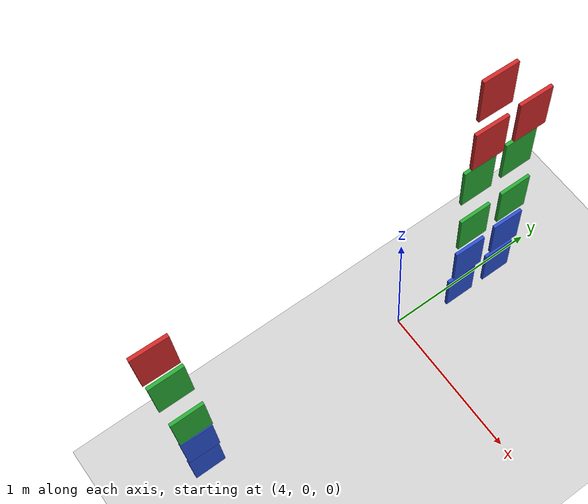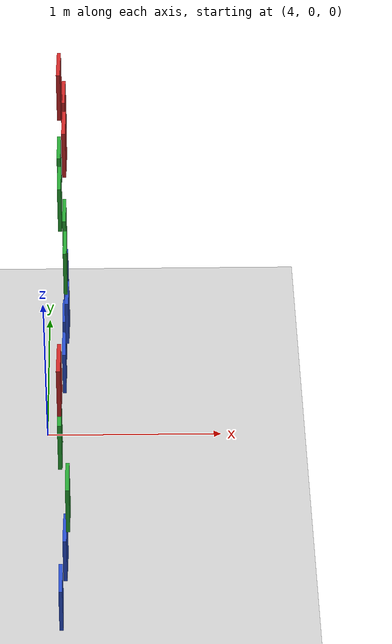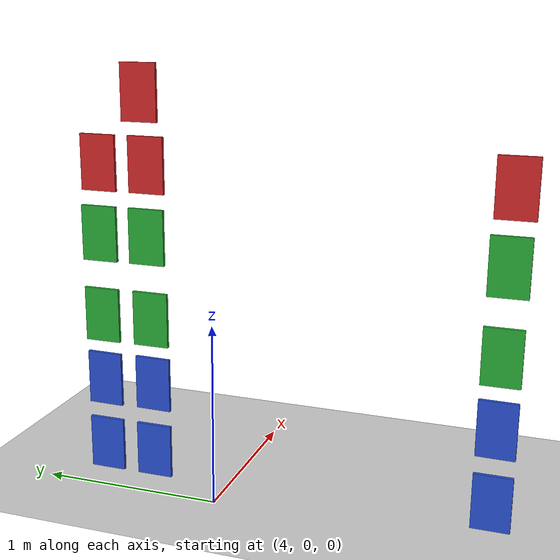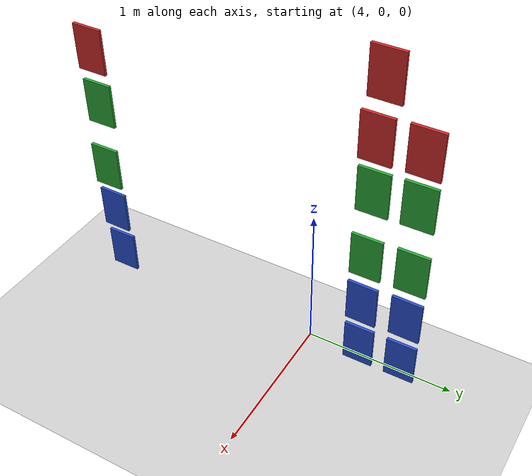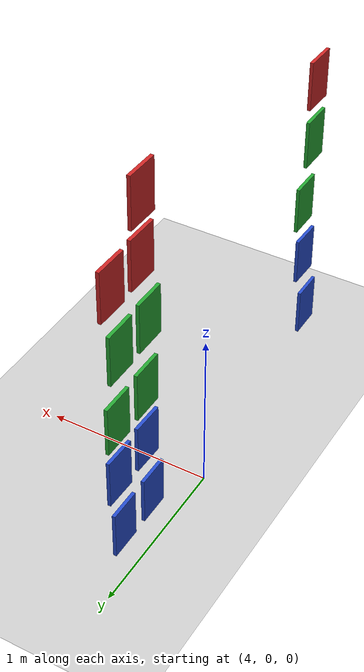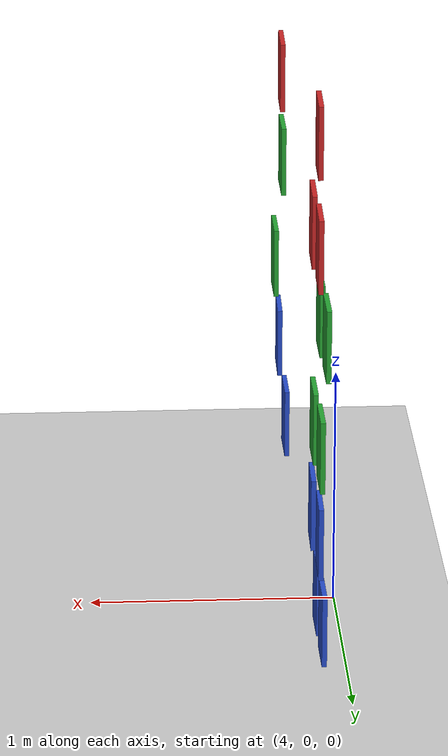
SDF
<sdf version="1.6">
 <world name="default">
  <model name="ground_plane">
   <static>1</static>
   <link name="link">
    <collision name="collision">
     <geometry><plane><normal>0 0 1</normal><size>100 100</size></plane></geometry>
     <surface><friction><ode><mu>100</mu><mu2>50</mu2></ode></friction></surface>
    </collision>
    <visual name="visual">
     <cast_shadows>0</cast_shadows>
     <geometry><plane><normal>0 0 1</normal><size>100 100</size></plane></geometry>
     <material>
      <script><uri>file://media/materials/scripts/gazebo.material</uri><name>Gazebo/Grey</name></script>
     </material>
    </visual>
   </link>
  </model>
  <model name="bluecube_0_clone_clone_9_clone_11_clone_clone_4">
   <static>1</static>
   <link name="link">
    <pose>0 0 0.21 0 -0 0</pose>
    <collision name="collision"><geometry><box><size>0.2 0.02 0.3</size></box></geometry></collision>
    <visual name="visual">
     <geometry><box><size>0.2 0.02 0.3</size></box></geometry>
     <material>
      <script><uri>file://media/materials/scripts/gazebo.material</uri><name>Gazebo/Blue</name></script>
     </material>
    </visual>
   </link>
   <pose>4.0973 0.680387 0 0 -0 1.57146</pose>
  </model>
  <model name="bluecube_0_clone_clone_9_clone_11_clone_clone_5">
   <static>1</static>
   <link name="link">
    <pose>0 0 0.21 0 -0 0</pose>
    <collision name="collision"><geometry><box><size>0.2 0.02 0.3</size></box></geometry></collision>
    <visual name="visual">
     <geometry><box><size>0.2 0.02 0.3</size></box></geometry>
     <material>
      <script><uri>file://media/materials/scripts/gazebo.material</uri><name>Gazebo/Blue</name></script>
     </material>
    </visual>
   </link>
   <pose>4.09781 0.393299 0 0 -0 1.57146</pose>
  </model>
  <model name="bluecube_0_clone_clone_9_clone_11_clone_clone_6">
   <static>1</static>
   <link name="link">
    <pose>0 0 0.21 0 -0 0</pose>
    <collision name="collision"><geometry><box><size>0.2 0.02 0.3</size></box></geometry></collision>
    <visual name="visual">
     <geometry><box><size>0.2 0.02 0.3</size></box></geometry>
     <material>
      <script><uri>file://media/materials/scripts/gazebo.material</uri><name>Gazebo/Blue</name></script>
     </material>
    </visual>
   </link>
   <pose>4.0992 -1.45577 0 0 -0 1.57146</pose>
  </model>
  <model name="bluecube_0_clone_clone_10_clone_clone_21_clone_clone_5">
   <static>1</static>
   <link name="link">
    <pose>0 0 0.21 0 -0 0</pose>
    <collision name="collision"><geometry><box><size>0.2 0.02 0.3</size></box></geometry></collision>
    <visual name="visual">
     <geometry><box><size>0.2 0.02 0.3</size></box></geometry>
     <material>
      <script><uri>file://media/materials/scripts/gazebo.material</uri><name>Gazebo/Blue</name></script>
     </material>
    </visual>
   </link>
   <pose>4.11325 0.688223 0.38097 0 -0 1.5507</pose>
  </model>
  <model name="bluecube_0_clone_clone_10_clone_clone_21_clone_clone_6">
   <static>1</static>
   <link name="link">
    <pose>0 0 0.21 0 -0 0</pose>
    <collision name="collision"><geometry><box><size>0.2 0.02 0.3</size></box></geometry></collision>
    <visual name="visual">
     <geometry><box><size>0.2 0.02 0.3</size></box></geometry>
     <material>
      <script><uri>file://media/materials/scripts/gazebo.material</uri><name>Gazebo/Blue</name></script>
     </material>
    </visual>
   </link>
   <pose>4.12204 0.403131 0.38097 0 -0 1.5507</pose>
  </model>
  <model name="bluecube_0_clone_clone_10_clone_clone_21_clone_clone_7">
   <static>1</static>
   <link name="link">
    <pose>0 0 0.21 0 -0 0</pose>
    <collision name="collision"><geometry><box><size>0.2 0.02 0.3</size></box></geometry></collision>
    <visual name="visual">
     <geometry><box><size>0.2 0.02 0.3</size></box></geometry>
     <material>
      <script><uri>file://media/materials/scripts/gazebo.material</uri><name>Gazebo/Blue</name></script>
     </material>
    </visual>
   </link>
   <pose>4.13062 -1.45389 0.38097 0 -0 1.5507</pose>
  </model>
  <model name="greencube_clone_clone_22_clone_clone_5">
   <static>1</static>
   <link name="link">
    <pose>0 0 0.21 0 -0 0</pose>
    <collision name="collision"><geometry><box><size>0.2 0.02 0.3</size></box></geometry></collision>
    <visual name="visual">
     <geometry><box><size>0.2 0.02 0.3</size></box></geometry>
     <material>
      <script><uri>file://media/materials/scripts/gazebo.material</uri><name>Gazebo/Green</name></script>
     </material>
    </visual>
   </link>
   <pose>4.11172 0.690756 0.751098 0 -0 1.56837</pose>
  </model>
  <model name="greencube_clone_clone_22_clone_clone_6">
   <static>1</static>
   <link name="link">
    <pose>0 0 0.21 0 -0 0</pose>
    <collision name="collision"><geometry><box><size>0.2 0.02 0.3</size></box></geometry></collision>
    <visual name="visual">
     <geometry><box><size>0.2 0.02 0.3</size></box></geometry>
     <material>
      <script><uri>file://media/materials/scripts/gazebo.material</uri><name>Gazebo/Green</name></script>
     </material>
    </visual>
   </link>
   <pose>4.1181 0.406165 0.751098 0 -0 1.56837</pose>
  </model>
  <model name="greencube_clone_clone_22_clone_clone_7">
   <static>1</static>
   <link name="link">
    <pose>0 0 0.21 0 -0 0</pose>
    <collision name="collision"><geometry><box><size>0.2 0.02 0.3</size></box></geometry></collision>
    <visual name="visual">
     <geometry><box><size>0.2 0.02 0.3</size></box></geometry>
     <material>
      <script><uri>file://media/materials/scripts/gazebo.material</uri><name>Gazebo/Green</name></script>
     </material>
    </visual>
   </link>
   <pose>4.15029 -1.45255 0.751098 0 -0 1.56837</pose>
  </model>
  <model name="greencube_clone_clone_22_clone_clone_10_clone_clone_clone_17">
   <static>1</static>
   <link name="link">
    <pose>0 0 0.21 0 -0 0</pose>
    <collision name="collision"><geometry><box><size>0.2 0.02 0.3</size></box></geometry></collision>
    <visual name="visual">
     <geometry><box><size>0.2 0.02 0.3</size></box></geometry>
     <material>
      <script><uri>file://media/materials/scripts/gazebo.material</uri><name>Gazebo/Green</name></script>
     </material>
    </visual>
   </link>
   <pose>4.09153 0.679237 1.21098 0 -0 1.56837</pose>
  </model>
  <model name="greencube_clone_clone_22_clone_clone_10_clone_clone_clone_18">
   <static>1</static>
   <link name="link">
    <pose>0 0 0.21 0 -0 0</pose>
    <collision name="collision"><geometry><box><size>0.2 0.02 0.3</size></box></geometry></collision>
    <visual name="visual">
     <geometry><box><size>0.2 0.02 0.3</size></box></geometry>
     <material>
      <script><uri>file://media/materials/scripts/gazebo.material</uri><name>Gazebo/Green</name></script>
     </material>
    </visual>
   </link>
   <pose>4.09682 0.407435 1.21098 0 -0 1.56837</pose>
  </model>
  <model name="greencube_clone_clone_22_clone_clone_10_clone_clone_clone_19">
   <static>1</static>
   <link name="link">
    <pose>0 0 0.21 0 -0 0</pose>
    <collision name="collision"><geometry><box><size>0.2 0.02 0.3</size></box></geometry></collision>
    <visual name="visual">
     <geometry><box><size>0.2 0.02 0.3</size></box></geometry>
     <material>
      <script><uri>file://media/materials/scripts/gazebo.material</uri><name>Gazebo/Green</name></script>
     </material>
    </visual>
   </link>
   <pose>4.1205 -1.46075 1.21098 0 -0 1.56837</pose>
  </model>
  <model name="redcube_clone_clone_22_clone_clone_17">
   <static>1</static>
   <link name="link">
    <pose>0 0 0.21 0 -0 0</pose>
    <collision name="collision"><geometry><box><size>0.2 0.02 0.3</size></box></geometry></collision>
    <visual name="visual">
     <geometry><box><size>0.2 0.02 0.3</size></box></geometry>
     <material>
      <script><uri>file://media/materials/scripts/gazebo.material</uri><name>Gazebo/Red</name></script>
     </material>
    </visual>
   </link>
   <pose>4.12444 0.68954 1.58534 0 -0 1.55372</pose>
  </model>
  <model name="redcube_clone_clone_22_clone_clone_18">
   <static>1</static>
   <link name="link">
    <pose>0 0 0.21 0 -0 0</pose>
    <collision name="collision"><geometry><box><size>0.2 0.02 0.3</size></box></geometry></collision>
    <visual name="visual">
     <geometry><box><size>0.2 0.02 0.3</size></box></geometry>
     <material>
      <script><uri>file://media/materials/scripts/gazebo.material</uri><name>Gazebo/Red</name></script>
     </material>
    </visual>
   </link>
   <pose>4.12958 0.415233 1.58534 0 -0 1.55372</pose>
  </model>
  <model name="redcube_clone_clone_22_clone_clone_19">
   <static>1</static>
   <link name="link">
    <pose>0 0 0.21 0 -0 0</pose>
    <collision name="collision"><geometry><box><size>0.2 0.02 0.3</size></box></geometry></collision>
    <visual name="visual">
     <geometry><box><size>0.2 0.02 0.3</size></box></geometry>
     <material>
      <script><uri>file://media/materials/scripts/gazebo.material</uri><name>Gazebo/Red</name></script>
     </material>
    </visual>
   </link>
   <pose>4.12545 -1.4697 1.58534 0 -0 1.55372</pose>
  </model>
  <model name="redcube_clone_clone_22_clone_clone_22_clone_clone_3">
   <static>1</static>
   <link name="link">
    <pose>0 0 0.21 0 -0 0</pose>
    <collision name="collision"><geometry><box><size>0.2 0.02 0.3</size></box></geometry></collision>
    <visual name="visual">
     <geometry><box><size>0.2 0.02 0.3</size></box></geometry>
     <material>
      <script><uri>file://media/materials/scripts/gazebo.material</uri><name>Gazebo/Red</name></script>
     </material>
    </visual>
   </link>
   <pose>4.10952 0.43561 1.95914 0 -0 1.55372</pose>
  </model>
 </world>
</sdf>
